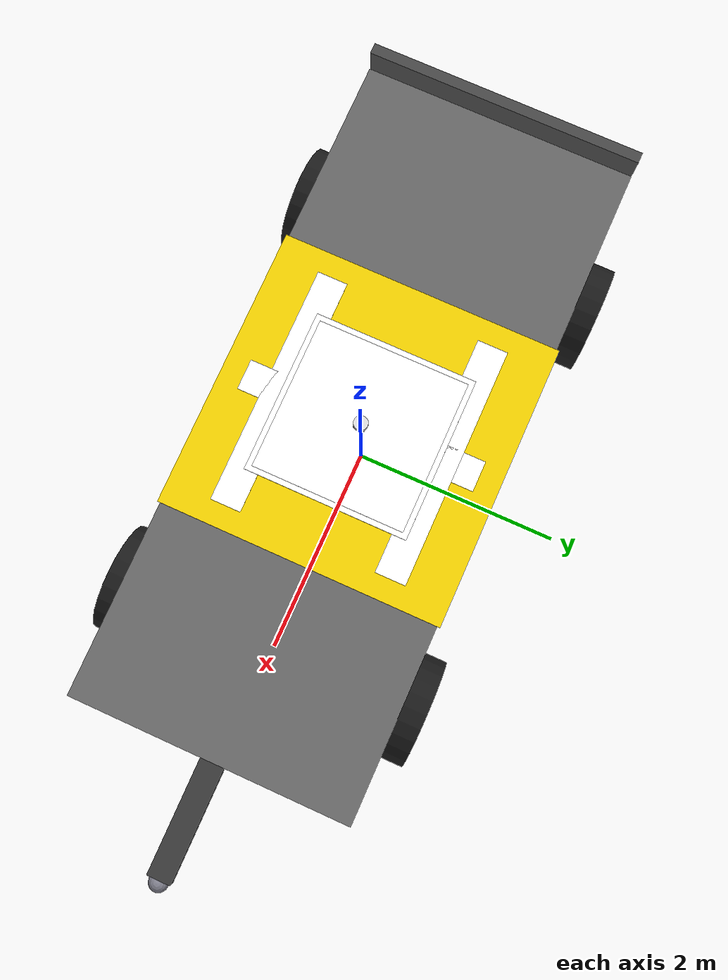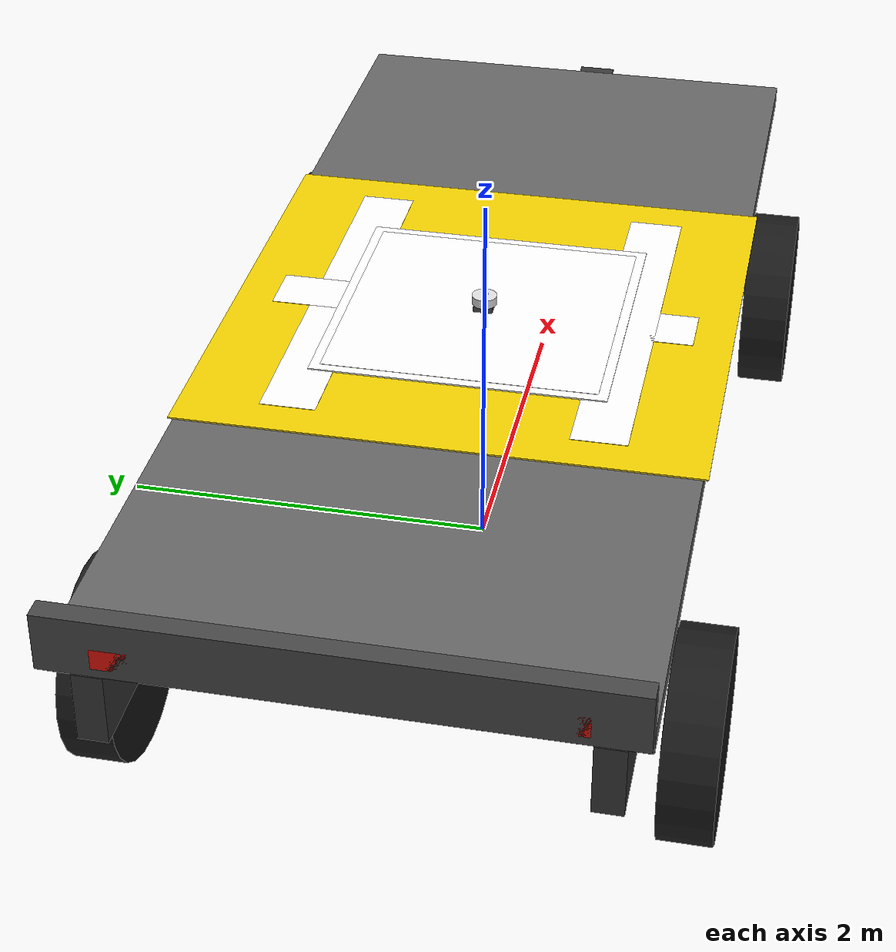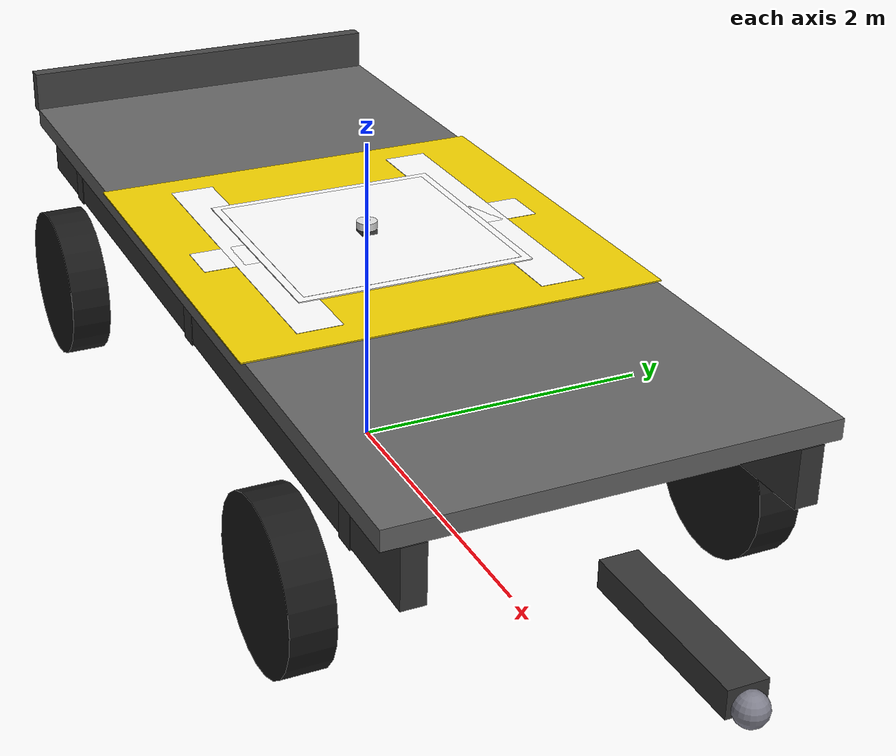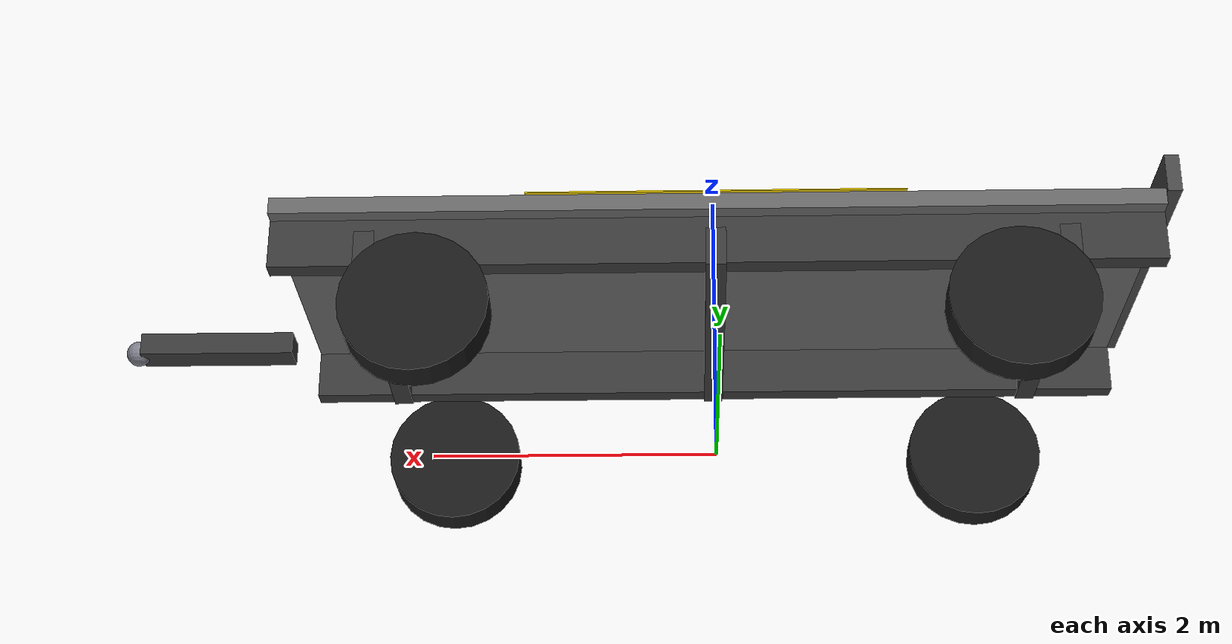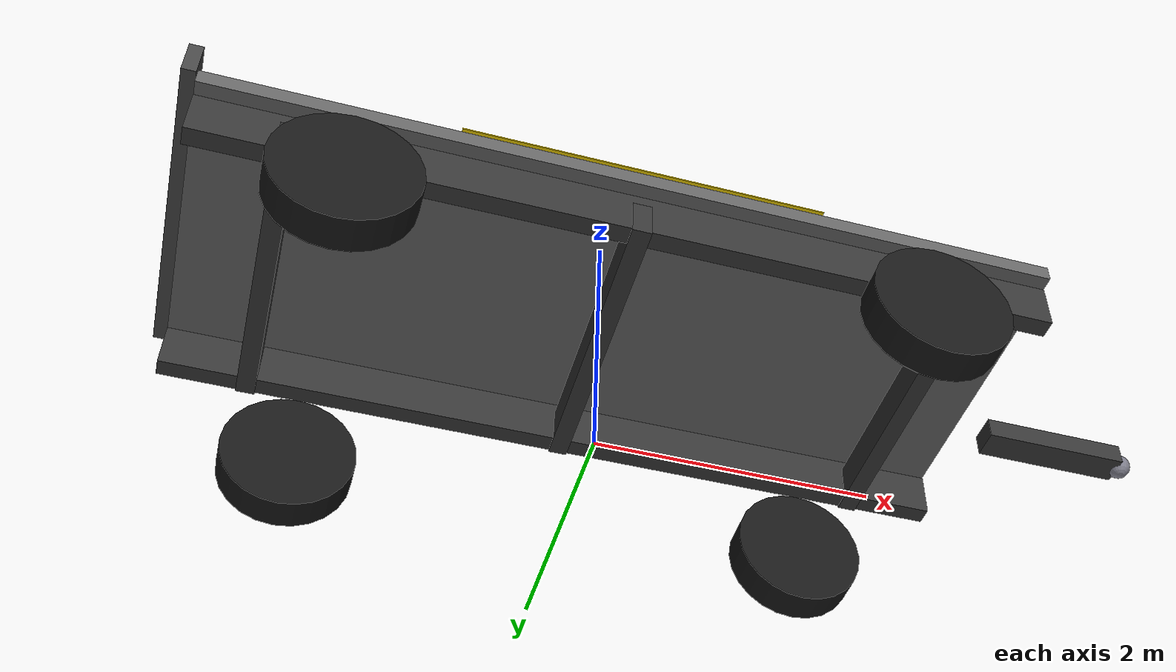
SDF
<?xml version="1.0" ?>
<sdf version="1.9">
  <model name="landing_trailer">
    <static>false</static>
    <self_collide>false</self_collide>

    <link name="base_link">
      <inertial>
        <mass>1300.0</mass>
        <inertia>
          <ixx>1100.0</ixx>
          <ixy>0.0</ixy>
          <ixz>0.0</ixz>
          <iyy>4200.0</iyy>
          <iyz>0.0</iyz>
          <izz>4600.0</izz>
        </inertia>
      </inertial>
      <velocity_decay>
        <linear>0.30</linear>
        <angular>2.10</angular>
      </velocity_decay>

      <visual name="frame_rail_left">
        <pose>0 1.1 1.1 0 0 0</pose>
        <geometry><box><size>6.1 0.14 0.35</size></box></geometry>
        <material>
          <ambient>0.22 0.22 0.22 1</ambient>
          <diffuse>0.22 0.22 0.22 1</diffuse>
          <specular>0.05 0.05 0.05 1</specular>
        </material>
      </visual>
      <collision name="frame_rail_left_col">
        <pose>0 1.1 1.1 0 0 0</pose>
        <geometry><box><size>6.1 0.14 0.35</size></box></geometry>
      </collision>

      <visual name="frame_rail_right">
        <pose>0 -1.1 1.1 0 0 0</pose>
        <geometry><box><size>6.1 0.14 0.35</size></box></geometry>
        <material>
          <ambient>0.22 0.22 0.22 1</ambient>
          <diffuse>0.22 0.22 0.22 1</diffuse>
          <specular>0.05 0.05 0.05 1</specular>
        </material>
      </visual>
      <collision name="frame_rail_right_col">
        <pose>0 -1.1 1.1 0 0 0</pose>
        <geometry><box><size>6.1 0.14 0.35</size></box></geometry>
      </collision>

      <visual name="cross_beam_rear">
        <pose>-2.4 0 1.05 0 0 0</pose>
        <geometry><box><size>0.14 2.35 0.28</size></box></geometry>
        <material>
          <ambient>0.22 0.22 0.22 1</ambient>
          <diffuse>0.22 0.22 0.22 1</diffuse>
        </material>
      </visual>
      <collision name="cross_beam_rear_col">
        <pose>-2.4 0 1.05 0 0 0</pose>
        <geometry><box><size>0.14 2.35 0.28</size></box></geometry>
      </collision>

      <visual name="cross_beam_front">
        <pose>2.4 0 1.05 0 0 0</pose>
        <geometry><box><size>0.14 2.35 0.28</size></box></geometry>
        <material>
          <ambient>0.22 0.22 0.22 1</ambient>
          <diffuse>0.22 0.22 0.22 1</diffuse>
        </material>
      </visual>
      <collision name="cross_beam_front_col">
        <pose>2.4 0 1.05 0 0 0</pose>
        <geometry><box><size>0.14 2.35 0.28</size></box></geometry>
      </collision>

      <visual name="cross_beam_mid">
        <pose>0 0 1.05 0 0 0</pose>
        <geometry><box><size>0.14 2.35 0.28</size></box></geometry>
        <material>
          <ambient>0.22 0.22 0.22 1</ambient>
          <diffuse>0.22 0.22 0.22 1</diffuse>
        </material>
      </visual>
      <collision name="cross_beam_mid_col">
        <pose>0 0 1.05 0 0 0</pose>
        <geometry><box><size>0.14 2.35 0.28</size></box></geometry>
      </collision>

      <visual name="trailer_bed">
        <pose>0 0 1.34 0 0 0</pose>
        <geometry><box><size>6.1 2.55 0.12</size></box></geometry>
        <material>
          <ambient>0.42 0.42 0.42 1</ambient>
          <diffuse>0.40 0.40 0.40 1</diffuse>
          <specular>0.08 0.08 0.08 1</specular>
        </material>
      </visual>
      <collision name="trailer_bed_col">
        <pose>0 0 1.34 0 0 0</pose>
        <geometry><box><size>6.1 2.55 0.12</size></box></geometry>
      </collision>

      <visual name="trailer_rear_board">
        <pose>-3.11 0 1.52 0 0 0</pose>
        <geometry><box><size>0.10 2.55 0.28</size></box></geometry>
        <material>
          <ambient>0.30 0.30 0.30 1</ambient>
          <diffuse>0.28 0.28 0.28 1</diffuse>
        </material>
      </visual>
      <collision name="trailer_rear_board_col">
        <pose>-3.11 0 1.52 0 0 0</pose>
        <geometry><box><size>0.10 2.55 0.28</size></box></geometry>
      </collision>

      <visual name="rear_light_left">
        <pose>-3.12 0.95 1.47 0 0 0</pose>
        <geometry><box><size>0.08 0.16 0.10</size></box></geometry>
        <material>
          <ambient>0.90 0.10 0.05 1</ambient>
          <diffuse>0.88 0.08 0.04 1</diffuse>
        </material>
      </visual>
      <visual name="rear_light_right">
        <pose>-3.12 -0.95 1.47 0 0 0</pose>
        <geometry><box><size>0.08 0.16 0.10</size></box></geometry>
        <material>
          <ambient>0.90 0.10 0.05 1</ambient>
          <diffuse>0.88 0.08 0.04 1</diffuse>
        </material>
      </visual>

      <visual name="tongue_main">
        <pose>3.6 0 0.85 0 0 0</pose>
        <geometry><box><size>1.10 0.22 0.16</size></box></geometry>
        <material>
          <ambient>0.25 0.25 0.25 1</ambient>
          <diffuse>0.22 0.22 0.22 1</diffuse>
        </material>
      </visual>
      <collision name="tongue_main_col">
        <pose>3.6 0 0.85 0 0 0</pose>
        <geometry><box><size>1.10 0.22 0.16</size></box></geometry>
      </collision>

      <visual name="landing_pad_bg">
        <pose>0 0 1.406 0 0 0</pose>
        <geometry><box><size>2.6 2.6 0.008</size></box></geometry>
        <material>
          <ambient>0.95 0.82 0.0 1</ambient>
          <diffuse>0.95 0.82 0.0 1</diffuse>
          <specular>0.15 0.12 0.0 1</specular>
        </material>
      </visual>
      <visual name="landing_pad_h_bar">
        <pose>0 0 1.411 0 0 0</pose>
        <geometry><box><size>0.28 2.2 0.002</size></box></geometry>
        <material>
          <ambient>1.0 1.0 1.0 1</ambient>
          <diffuse>1.0 1.0 1.0 1</diffuse>
        </material>
      </visual>
      <visual name="landing_pad_h_left">
        <pose>0 0.76 1.411 0 0 0</pose>
        <geometry><box><size>2.2 0.28 0.002</size></box></geometry>
        <material>
          <ambient>1.0 1.0 1.0 1</ambient>
          <diffuse>1.0 1.0 1.0 1</diffuse>
        </material>
      </visual>
      <visual name="landing_pad_h_right">
        <pose>0 -0.76 1.411 0 0 0</pose>
        <geometry><box><size>2.2 0.28 0.002</size></box></geometry>
        <material>
          <ambient>1.0 1.0 1.0 1</ambient>
          <diffuse>1.0 1.0 1.0 1</diffuse>
        </material>
      </visual>

      <visual name="gps_mount_base">
        <pose>0 0 1.430 0 0 0</pose>
        <geometry><box><size>0.10 0.10 0.04</size></box></geometry>
        <material>
          <ambient>0.30 0.30 0.30 1</ambient>
          <diffuse>0.28 0.28 0.28 1</diffuse>
        </material>
      </visual>
      <visual name="gps_head">
        <pose>0 0 1.474 0 0 0</pose>
        <geometry><cylinder><radius>0.065</radius><length>0.048</length></cylinder></geometry>
        <material>
          <ambient>0.90 0.90 0.90 1</ambient>
          <diffuse>0.88 0.88 0.88 1</diffuse>
          <specular>0.4 0.4 0.4 1</specular>
        </material>
      </visual>
      <visual name="gps_led">
        <pose>0 0 1.502 0 0 0</pose>
        <geometry><cylinder><radius>0.018</radius><length>0.008</length></cylinder></geometry>
        <material>
          <ambient>0.0 0.9 0.2 1</ambient>
          <diffuse>0.0 0.9 0.2 1</diffuse>
        </material>
      </visual>

      <sensor name="gps_sensor" type="navsat">
        <pose>0 0 1.474 0 0 0</pose>
        <always_on>true</always_on>
        <update_rate>20.0</update_rate>
        <navsat>
          <position_sensing>
            <horizontal>
              <noise type="gaussian"><mean>0.0</mean><stddev>0.0</stddev></noise>
            </horizontal>
            <vertical>
              <noise type="gaussian"><mean>0.0</mean><stddev>0.0</stddev></noise>
            </vertical>
          </position_sensing>
          <velocity_sensing>
            <horizontal>
              <noise type="gaussian"><mean>0.0</mean><stddev>0.05</stddev></noise>
            </horizontal>
            <vertical>
              <noise type="gaussian"><mean>0.0</mean><stddev>0.05</stddev></noise>
            </vertical>
          </velocity_sensing>
        </navsat>
      </sensor>
    </link>

    <include>
      <uri>model://apriltag_36h11_2</uri>
      <name>trailer_apriltag_36h11_2</name>
      <pose relative_to="base_link">0 0 1.418 0 0 0</pose>
    </include>

    <joint name="trailer_apriltag_fixed_joint" type="fixed">
      <parent>base_link</parent>
      <child>trailer_apriltag_36h11_2::tag_link</child>
    </joint>

    <link name="coupler_link">
      <pose>4.18 0 0.82 0 0 0</pose>
      <inertial>
        <mass>10.0</mass>
        <inertia>
          <ixx>0.03</ixx>
          <ixy>0.0</ixy>
          <ixz>0.0</ixz>
          <iyy>0.03</iyy>
          <iyz>0.0</iyz>
          <izz>0.03</izz>
        </inertia>
      </inertial>
      <visual name="coupler">
        <geometry><sphere><radius>0.09</radius></sphere></geometry>
        <material>
          <ambient>0.55 0.55 0.60 1</ambient>
          <diffuse>0.50 0.50 0.55 1</diffuse>
          <specular>0.6 0.6 0.65 1</specular>
        </material>
      </visual>
      <collision name="coupler_col">
        <geometry><sphere><radius>0.07</radius></sphere></geometry>
      </collision>
    </link>
    <joint name="coupler_fixed_joint" type="fixed">
      <parent>base_link</parent>
      <child>coupler_link</child>
    </joint>

    <link name="wheel_rear_left">
      <pose>-2.0 1.38 0.50 -1.5708 0 0</pose>
      <inertial>
        <mass>35.0</mass>
        <inertia>
          <ixx>2.8</ixx>
          <iyy>2.8</iyy>
          <izz>3.6</izz>
        </inertia>
      </inertial>
      <visual name="visual">
        <geometry><cylinder><radius>0.50</radius><length>0.26</length></cylinder></geometry>
        <material>
          <ambient>0.12 0.12 0.12 1</ambient>
          <diffuse>0.10 0.10 0.10 1</diffuse>
        </material>
      </visual>
      <collision name="collision">
        <geometry><cylinder><radius>0.50</radius><length>0.26</length></cylinder></geometry>
        <surface>
          <friction>
            <ode>
              <mu>4.0</mu>
              <mu2>4.0</mu2>
              <fdir1>0 0 1</fdir1>
              <slip1>0.002</slip1>
              <slip2>0.004</slip2>
            </ode>
            <bullet>
                <friction>4.0</friction>
                <friction2>4.0</friction2>
                <rolling_friction>1.40</rolling_friction>
            </bullet>
          </friction>
        </surface>
      </collision>
    </link>
    <link name="wheel_rear_right">
      <pose>-2.0 -1.38 0.50 -1.5708 0 0</pose>
      <inertial>
        <mass>35.0</mass>
        <inertia>
          <ixx>2.8</ixx>
          <iyy>2.8</iyy>
          <izz>3.6</izz>
        </inertia>
      </inertial>
      <visual name="visual">
        <geometry><cylinder><radius>0.50</radius><length>0.26</length></cylinder></geometry>
        <material>
          <ambient>0.12 0.12 0.12 1</ambient>
          <diffuse>0.10 0.10 0.10 1</diffuse>
        </material>
      </visual>
      <collision name="collision">
        <geometry><cylinder><radius>0.50</radius><length>0.26</length></cylinder></geometry>
        <surface>
          <friction>
            <ode>
              <mu>4.0</mu>
              <mu2>4.0</mu2>
              <fdir1>0 0 1</fdir1>
              <slip1>0.002</slip1>
              <slip2>0.004</slip2>
            </ode>
            <bullet>
                <friction>4.0</friction>
                <friction2>4.0</friction2>
                <rolling_friction>1.40</rolling_friction>
            </bullet>
          </friction>
        </surface>
      </collision>
    </link>
    <link name="wheel_front_left">
      <pose>2.0 1.38 0.50 -1.5708 0 0</pose>
      <inertial>
        <mass>35.0</mass>
        <inertia>
          <ixx>2.8</ixx>
          <iyy>2.8</iyy>
          <izz>3.6</izz>
        </inertia>
      </inertial>
      <visual name="visual">
        <geometry><cylinder><radius>0.50</radius><length>0.26</length></cylinder></geometry>
        <material>
          <ambient>0.12 0.12 0.12 1</ambient>
          <diffuse>0.10 0.10 0.10 1</diffuse>
        </material>
      </visual>
      <collision name="collision">
        <geometry><cylinder><radius>0.50</radius><length>0.26</length></cylinder></geometry>
        <surface>
          <friction>
            <ode>
              <mu>0.02</mu>
              <mu2>0.02</mu2>
              <fdir1>0 0 1</fdir1>
              <slip1>1.5</slip1>
              <slip2>2.0</slip2>
            </ode>
            <bullet>
                <friction>0.02</friction>
                <friction2>0.02</friction2>
                <rolling_friction>0.0</rolling_friction>
            </bullet>
          </friction>
        </surface>
      </collision>
    </link>
    <link name="wheel_front_right">
      <pose>2.0 -1.38 0.50 -1.5708 0 0</pose>
      <inertial>
        <mass>35.0</mass>
        <inertia>
          <ixx>2.8</ixx>
          <iyy>2.8</iyy>
          <izz>3.6</izz>
        </inertia>
      </inertial>
      <visual name="visual">
        <geometry><cylinder><radius>0.50</radius><length>0.26</length></cylinder></geometry>
        <material>
          <ambient>0.12 0.12 0.12 1</ambient>
          <diffuse>0.10 0.10 0.10 1</diffuse>
        </material>
      </visual>
      <collision name="collision">
        <geometry><cylinder><radius>0.50</radius><length>0.26</length></cylinder></geometry>
        <surface>
          <friction>
            <ode>
              <mu>0.02</mu>
              <mu2>0.02</mu2>
              <fdir1>0 0 1</fdir1>
              <slip1>1.5</slip1>
              <slip2>2.0</slip2>
            </ode>
            <bullet>
                <friction>0.02</friction>
                <friction2>0.02</friction2>
                <rolling_friction>0.0</rolling_friction>
            </bullet>
          </friction>
        </surface>
      </collision>
    </link>

    <joint name="wheel_rear_left_joint" type="revolute">
      <parent>base_link</parent>
      <child>wheel_rear_left</child>
      <axis>
        <xyz>0 0 1</xyz>
        <limit>
          <lower>-1.79769e+308</lower>
          <upper>1.79769e+308</upper>
        </limit>
        <dynamics>
          <damping>18.0</damping>
          <friction>16.0</friction>
        </dynamics>
      </axis>
    </joint>
    <joint name="wheel_rear_right_joint" type="revolute">
      <parent>base_link</parent>
      <child>wheel_rear_right</child>
      <axis>
        <xyz>0 0 1</xyz>
        <limit>
          <lower>-1.79769e+308</lower>
          <upper>1.79769e+308</upper>
        </limit>
        <dynamics>
          <damping>18.0</damping>
          <friction>16.0</friction>
        </dynamics>
      </axis>
    </joint>
    <joint name="wheel_front_left_joint" type="revolute">
      <parent>base_link</parent>
      <child>wheel_front_left</child>
      <axis>
        <xyz>0 0 1</xyz>
        <limit>
          <lower>-1.79769e+308</lower>
          <upper>1.79769e+308</upper>
        </limit>
        <dynamics>
          <damping>0.2</damping>
          <friction>0.0</friction>
        </dynamics>
      </axis>
    </joint>
    <joint name="wheel_front_right_joint" type="revolute">
      <parent>base_link</parent>
      <child>wheel_front_right</child>
      <axis>
        <xyz>0 0 1</xyz>
        <limit>
          <lower>-1.79769e+308</lower>
          <upper>1.79769e+308</upper>
        </limit>
        <dynamics>
          <damping>0.2</damping>
          <friction>0.0</friction>
        </dynamics>
      </axis>
    </joint>

    <plugin
      filename="gz-sim-wheel-slip-system"
      name="gz::sim::systems::WheelSlip">
      <wheel link_name="wheel_rear_left">
        <wheel_radius>0.50</wheel_radius>
        <slip_compliance_lateral>0.02</slip_compliance_lateral>
        <slip_compliance_longitudinal>0.0005</slip_compliance_longitudinal>
        <wheel_normal_force>12500</wheel_normal_force>
      </wheel>
      <wheel link_name="wheel_rear_right">
        <wheel_radius>0.50</wheel_radius>
        <slip_compliance_lateral>0.02</slip_compliance_lateral>
        <slip_compliance_longitudinal>0.0005</slip_compliance_longitudinal>
        <wheel_normal_force>12500</wheel_normal_force>
      </wheel>
      <wheel link_name="wheel_front_left">
        <wheel_radius>0.50</wheel_radius>
        <slip_compliance_lateral>8.0</slip_compliance_lateral>
        <slip_compliance_longitudinal>4.0</slip_compliance_longitudinal>
        <wheel_normal_force>1500</wheel_normal_force>
      </wheel>
      <wheel link_name="wheel_front_right">
        <wheel_radius>0.50</wheel_radius>
        <slip_compliance_lateral>8.0</slip_compliance_lateral>
        <slip_compliance_longitudinal>4.0</slip_compliance_longitudinal>
        <wheel_normal_force>1500</wheel_normal_force>
      </wheel>
    </plugin>
  </model>
</sdf>

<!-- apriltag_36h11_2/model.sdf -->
<sdf version="1.9">
  <model name="apriltag_36h11_2">
    <static>false</static>
    <link name="tag_link">
      <inertial>
        <mass>0.02</mass>
        <inertia>
          <ixx>1e-4</ixx>
          <ixy>0</ixy>
          <ixz>0</ixz>
          <iyy>1e-4</iyy>
          <iyz>0</iyz>
          <izz>1e-4</izz>
        </inertia>
      </inertial>

      <visual name="tag_backing">
        <pose>0 0 -0.004 0 0 0</pose>
        <geometry>
          <box>
            <size>1.50 1.50 0.008</size>
          </box>
        </geometry>
        <material>
          <ambient>1 1 1 1</ambient>
          <diffuse>1 1 1 1</diffuse>
          <specular>0.05 0.05 0.05 1</specular>
        </material>
      </visual>

      <visual name="tag36h11_2">
        <pose>0 0 0.001 0 0 0</pose>
        <geometry>
          <plane>
            <normal>0 0 1</normal>
            <size>1.40 1.40</size>
          </plane>
        </geometry>
        <material>
          <ambient>1 1 1 1</ambient>
          <diffuse>1 1 1 1</diffuse>
          <specular>0 0 0 1</specular>
          <pbr>
            <metal>
              <albedo_map>model://apriltag_36h11_2/materials/textures/tag36h11_2.png</albedo_map>
              <roughness>1.0</roughness>
              <metalness>0.0</metalness>
            </metal>
          </pbr>
        </material>
      </visual>

    </link>
  </model>
</sdf>
